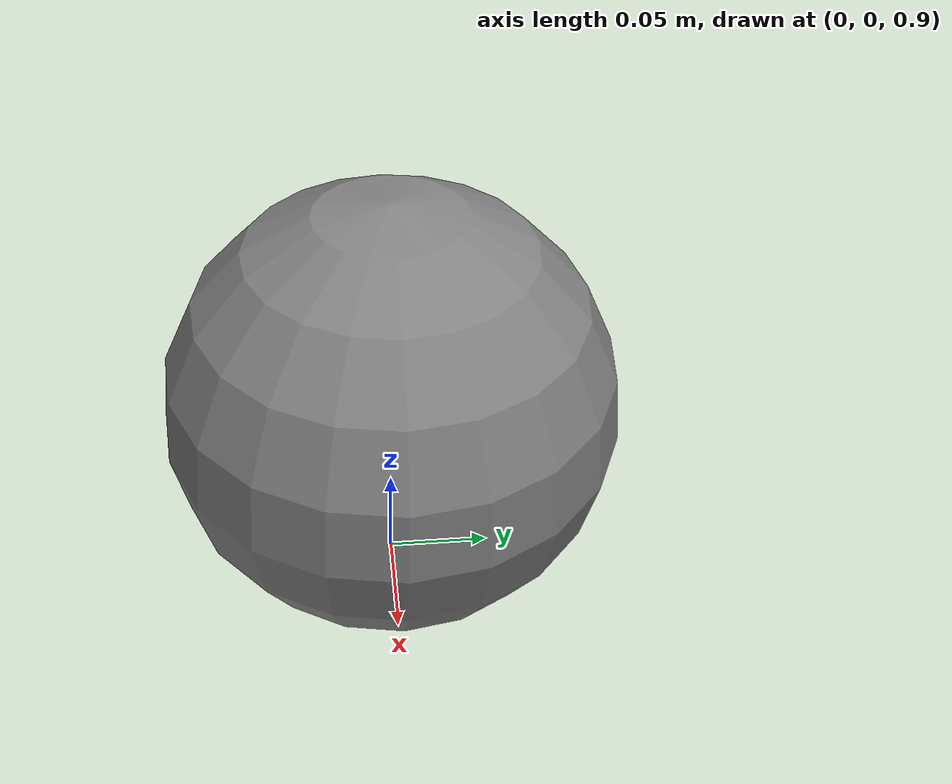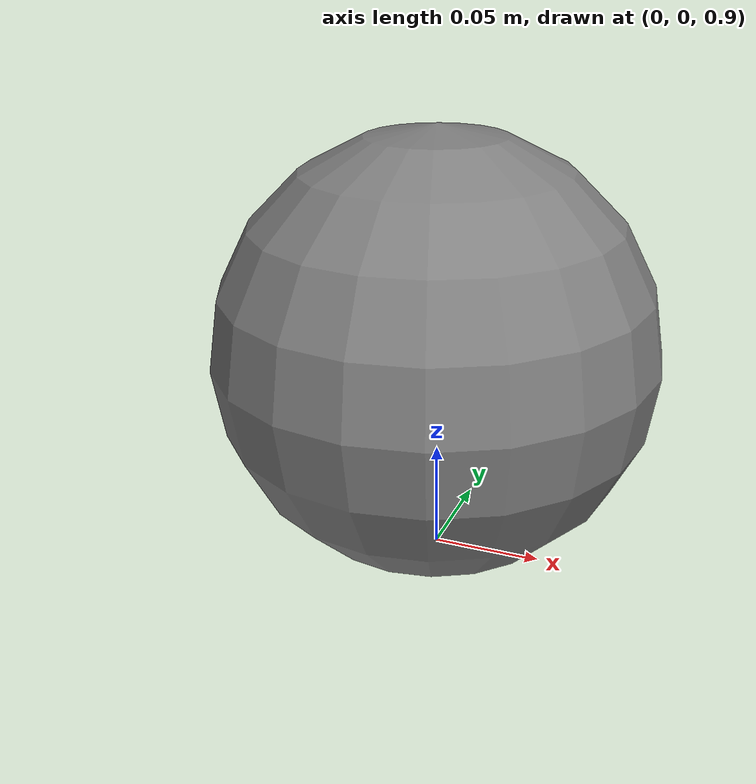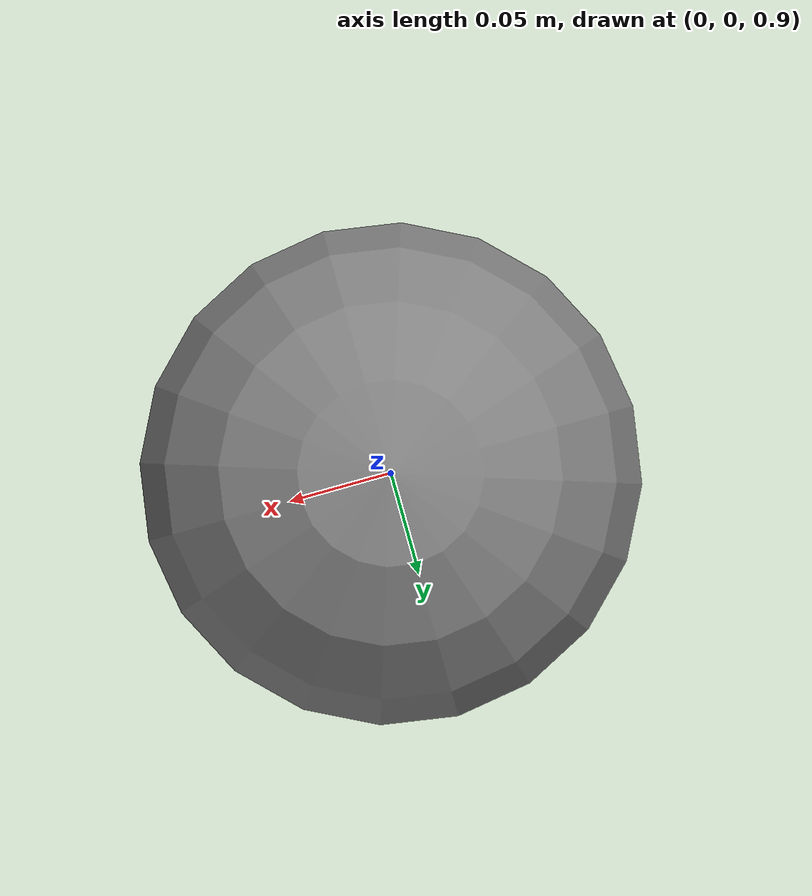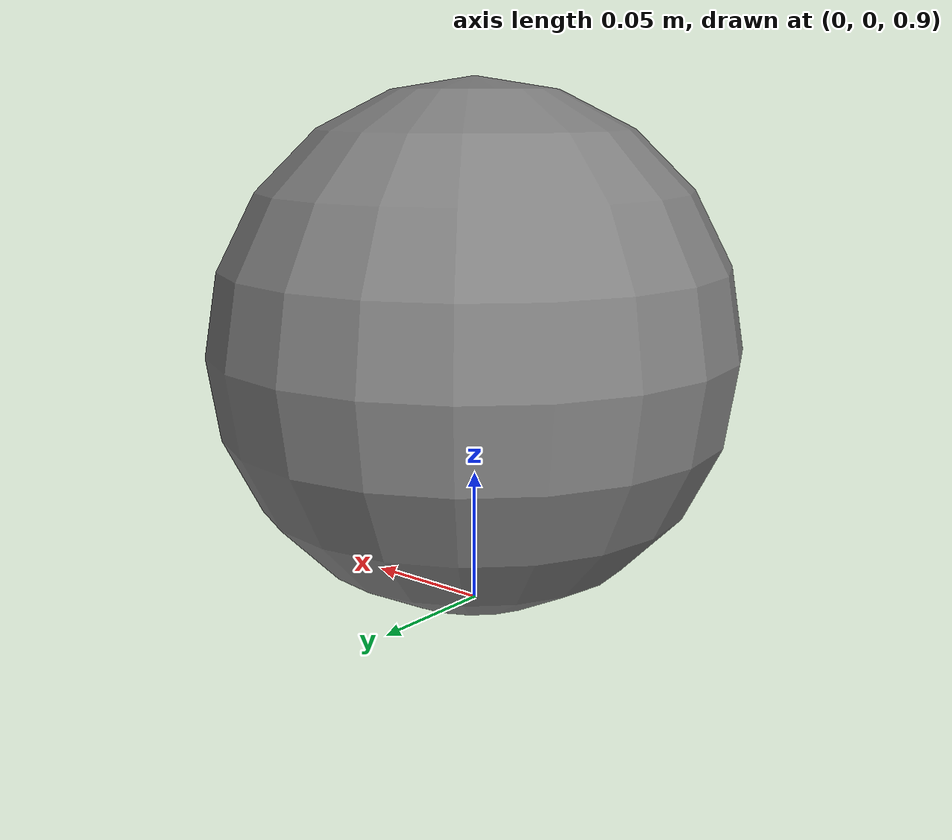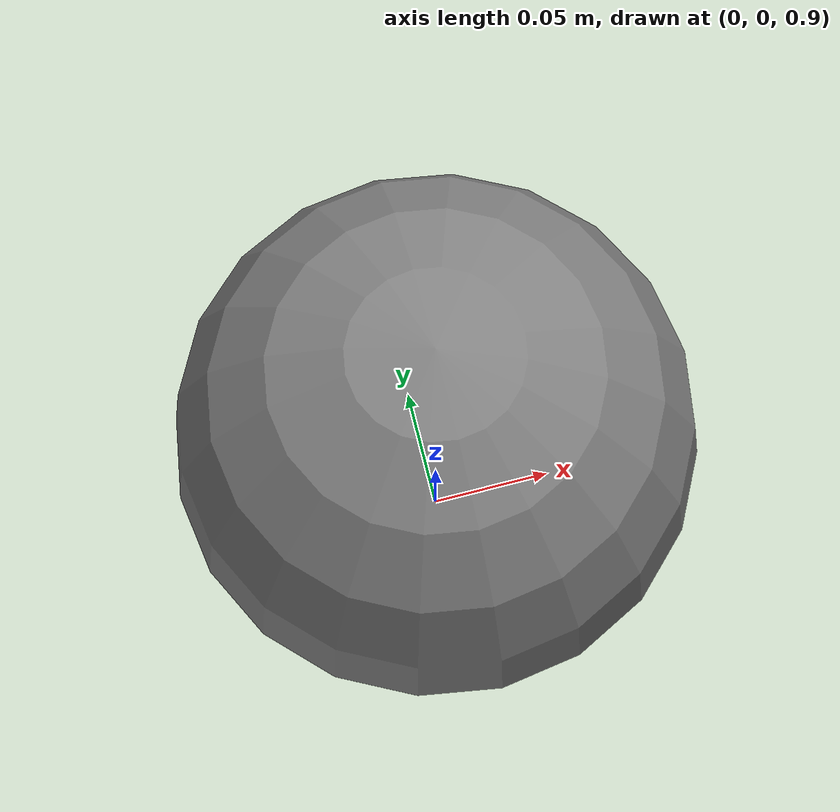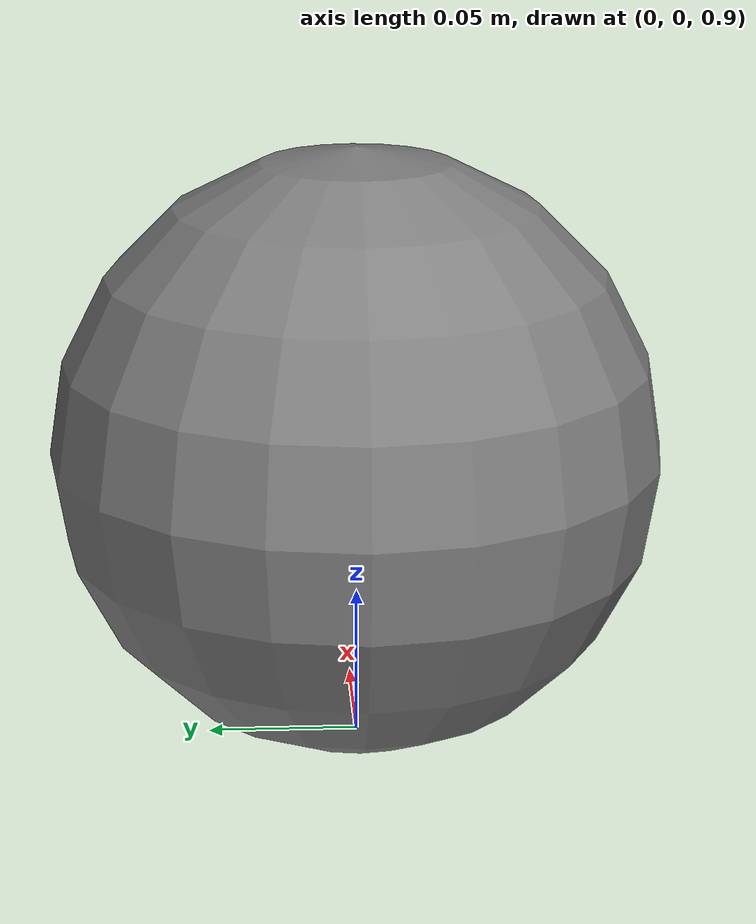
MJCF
<mujoco model="weld_mocap">
            <option gravity="0 0 0" timestep="0.001" integrator="RK4"/>
            <worldbody>
                <body name="target" mocap="true" pos="0 0 1">
                    <geom type="sphere" size="0.05" mass="0.1"/>
                </body>
                <body name="follower" pos="0 0 1">
                    <freejoint name="free"/>
                    <geom type="sphere" size="0.1" mass="1.0"/>
                </body>
            </worldbody>
            <equality>
                <weld body1="follower" body2="target" solref="0.02 1.0"/>
            </equality>
        </mujoco>
